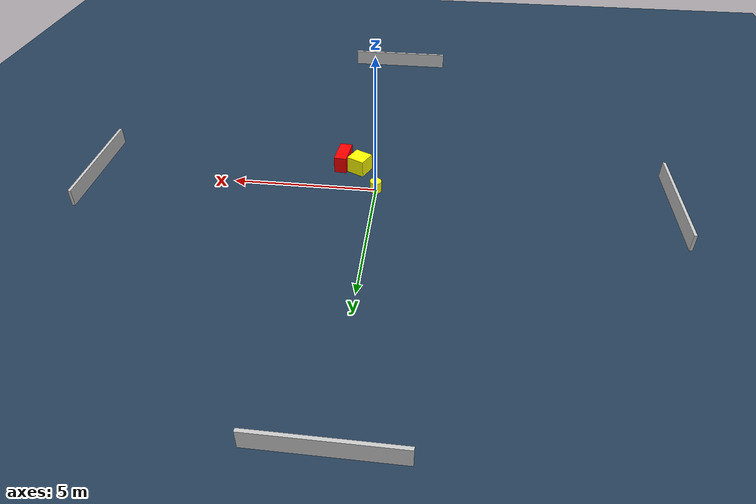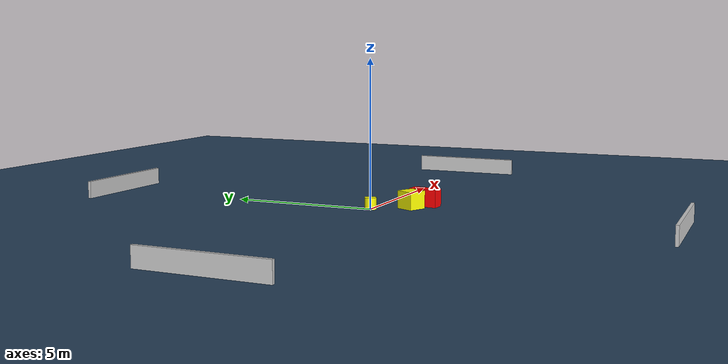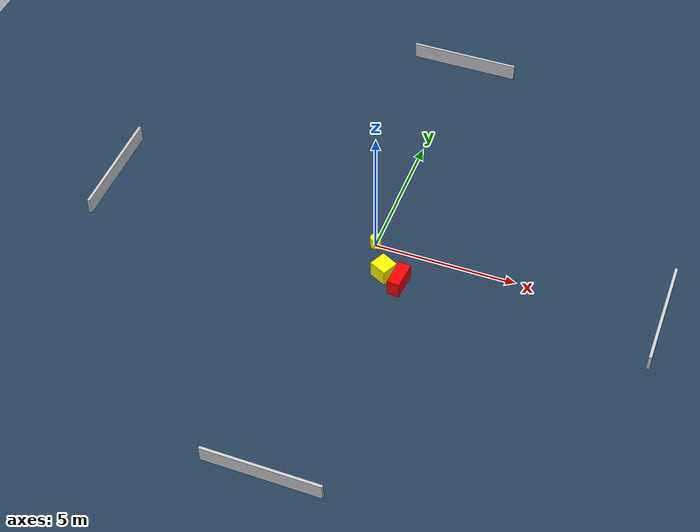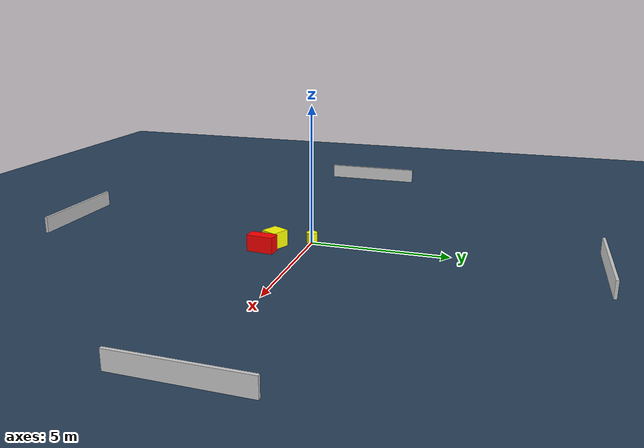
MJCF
<?xml version="1.0" ?>
<mujoco model="generated_environment">
  <option timestep="0.01" integrator="RK4" cone="elliptic"/>
  <default>
    <geom density="1"/>
  </default>
  <asset>
    <texture builtin="gradient" height="3072" name="skybox" rgb1="0.3 0.5 0.7" rgb2="0 0 0" type="skybox" width="512"/>
    <texture builtin="checker" height="300" name="groundplane" rgb1="0.2 0.3 0.4" rgb2="0.1 0.2 0.3" type="2d" width="300"/>
    <material name="groundplane" reflectance="0.2" texrepeat="5 5" texture="groundplane"/>
  </asset>
  <worldbody>
    <light dir="0 0 -1" directional="true" pos="0 0 1.5"/>
    <geom condim="3" friction="0.5 0.005 0.001" material="groundplane" name="floor" pos="0 0 0" size="0 0 0.05" type="plane"/>
    <body name="walls">
      <geom name="wall_1" condim="4" pos="-10.0 0.0 0.3" rgba="0.800000011920929 0.800000011920929 0.800000011920929 1.0" size="0.05 2.0 0.3" type="box"/>
      <geom name="wall_2" condim="4" pos="10.0 0.0 0.3" rgba="0.800000011920929 0.800000011920929 0.800000011920929 1.0" size="0.05 2.0 0.3" type="box"/>
      <geom name="wall_3" condim="4" pos="0.0 -10.0 0.3" rgba="0.800000011920929 0.800000011920929 0.800000011920929 1.0" size="2.0 0.05 0.3" type="box"/>
      <geom name="wall_4" condim="4" pos="0.0 10.0 0.3" rgba="0.800000011920929 0.800000011920929 0.800000011920929 1.0" size="2.0 0.05 0.3" type="box"/>
    </body>
    <body name="robot">
      <joint name="joint_x" type="slide" pos="0 0 0" axis="1 0 0"/>
      <joint name="joint_y" type="slide" pos="0 0 0" axis="0 1 0"/>
      <geom name="robot" type="cylinder" pos="0.0 0.0 0.2" size="0.2 0.2 0.0" mass="5.0" friction="1.0 0.005 0.0001" condim="4" rgba="1.0 1.0 0.0 1.0"/>
    </body>
    <body name="obstacle_1_movable">
      <geom name="obstacle_1_movable" condim="4" pos="0.7103074338678569 -1.1759964310785744 0.3" euler="0 0 64.11081570456211" friction="0.0 0.005 0.001" rgba="1.0 1.0 0.0 1.0" size="0.3103221746360706 0.3257047798302525 0.3" type="box" mass="0.1"/>
      <joint type="free"/>
    </body>
    <body name="obstacle_2_static">
      <geom name="obstacle_2_static" condim="4" pos="1.3404356704916551 -1.425163407400566 0.3" euler="0 0 264.78892256155365" friction="0.0 0.005 0.001" rgba="1.0 0.0 0.0 1.0" size="0.48820066787401767 0.22035848303543126 0.3" type="box"/>
    </body>
  </worldbody>
  <actuator>
    <motor name="actuator_x" joint="joint_x" gear="1" ctrlrange="-1 1"/>
    <motor name="actuator_y" joint="joint_y" gear="1" ctrlrange="-1 1"/>
  </actuator>
</mujoco>
